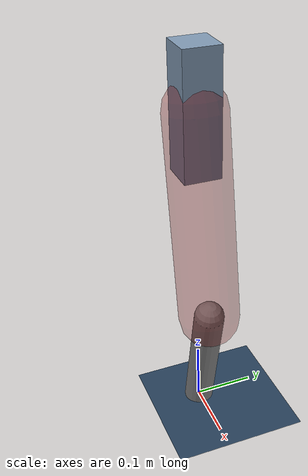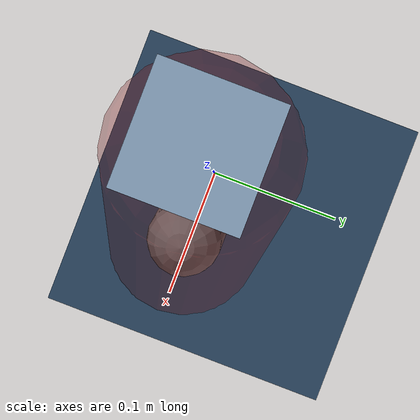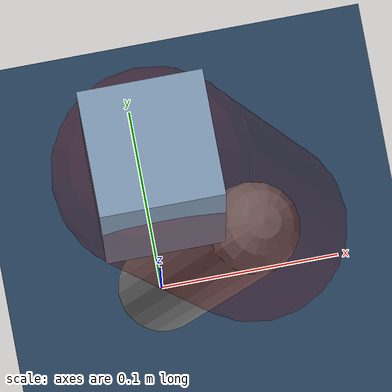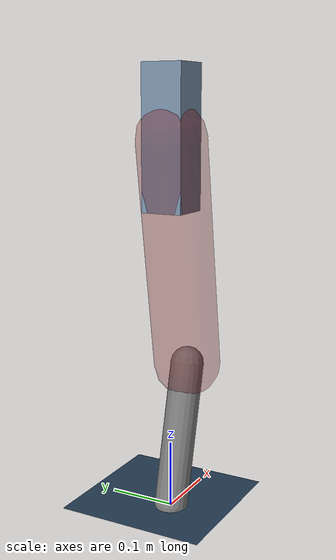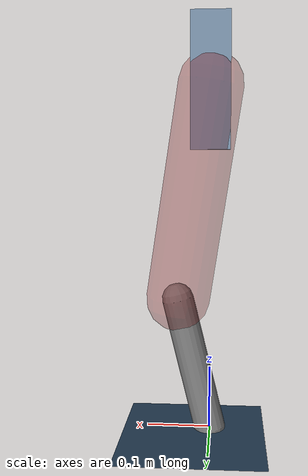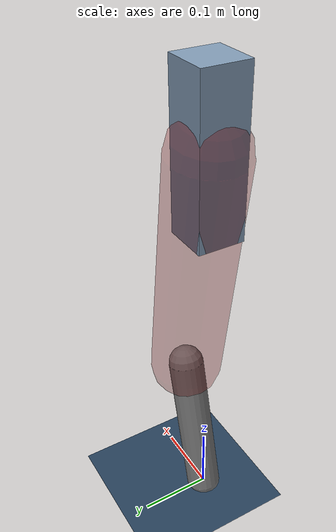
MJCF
<mujoco model="Hopper2D">
	<compiler inertiafromgeom="true" angle="radian" />
	<option timestep="0.001" integrator="implicit" cone="elliptic" solver="Newton" tolerance="1e-10" />

	<default>
		<geom contype="1" conaffinity="1" condim="3" friction="2 0.005 0.0001" solref="0.005 1" />
		<joint limited="true" damping="0.1" />
	</default>

	<asset>
		<texture name="skybox" type="skybox" builtin="gradient" rgb1=".4 .6 .8" rgb2="0 0 0" width="800" height="800" />
		<texture name="grid" type="2d" builtin="checker" rgb1=".1 .2 .3" rgb2=".2 .3 .4" width="300" height="300" mark="edge" markrgb=".2 .3 .4" />
		<material name="ground" texture="grid" texrepeat="1 1" texuniform="true" reflectance="0.1" />
		<material name="leg" rgba="0.5 0.6 0.7 1" />
	</asset>

	<worldbody>

		<geom name="floor" type="plane" size="5 5 0.25" material="ground" />

		<light directional="false" diffuse="0.8 0.8 0.8" specular="0.3 0.3 0.3" pos="0 0 2" dir="0 0 -1" />
		<light mode="targetbodycom" target="base" directional="false" diffuse="0.8 0.8 0.8" specular="0.3 0.3 0.3" pos="0 0 2" dir="0 0 -1" />

		<camera name="fixed" pos="0 -2 1" xyaxes="1 0 0 0 0 1" />
		<camera name="tracking" mode="trackcom" pos="0 -3 1" />

		<body name="root" pos="0 0 0.5443478931022198">
			<joint name="slide_x" type="slide" axis="1 0 0" range="-100 100" />
			<joint name="slide_z" type="slide" axis="0 0 1" range="0 10" />

			<body name="base" pos="0 0 0">
				<geom name="torso" type="box" size="0.03 0.03 0.1" mass="2.809" material="leg" />

				<body name="link1" pos="0 0 0" euler="0 1.4186984066908883 0">
					<joint type="hinge" axis="0 -1 0" pos="0 0 0" name="hinge1" limited="true" range="-3.14 3.14" stiffness="0" damping="0.1" />
					<geom name="thigh" type="capsule" fromto="0 0 0 0.33734854013084137 0 0" size="0.05" rgba="0.5 0 0 0.3" mass="1.0912759123663558" />

					<body name="link2" pos="0.33734854013084137 0 0" euler="0 0.38987388566363695 0">
						<joint type="hinge" axis="0 -1 0" pos="0 0 0" name="hinge2" limited="true" range="-3.14 3.14" stiffness="0" damping="0.1" />
						<geom name="shank" type="capsule" fromto="0 0 0 0.21699935297137837 0 0" size="0.025" mass="0.41519941767424057" />

					</body>
				</body>
			</body>
		</body>
	</worldbody>

	<actuator>
		<motor name="torque1" joint="hinge1" ctrlrange="-122.53324172945813 122.53324172945813" ctrllimited="true" gear="1" />
		<motor name="torque2" joint="hinge2" ctrlrange="-131.15941180787456 131.15941180787456" ctrllimited="true" gear="1" />
	</actuator>
</mujoco>
